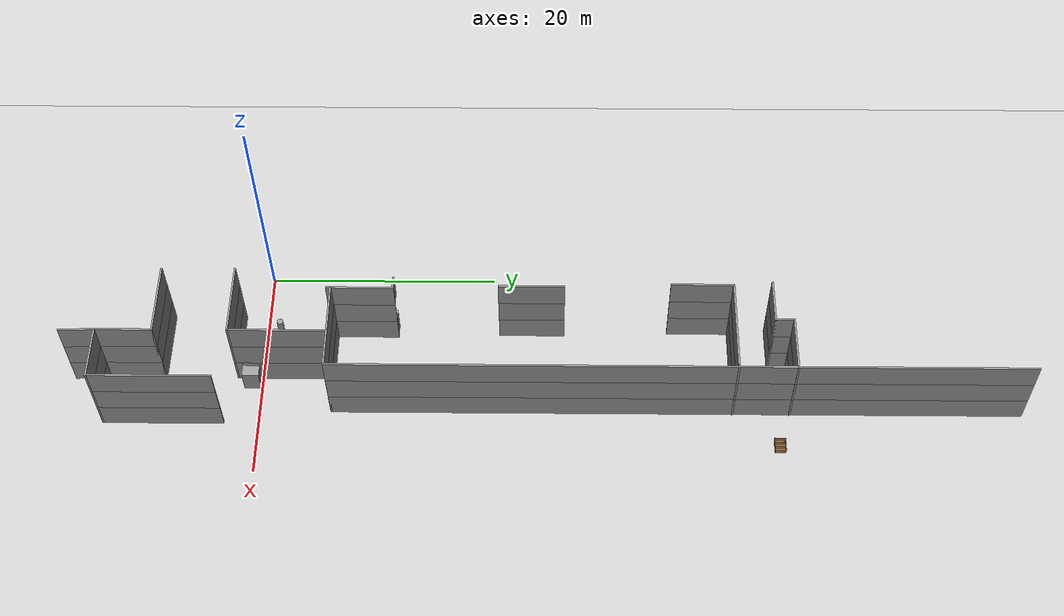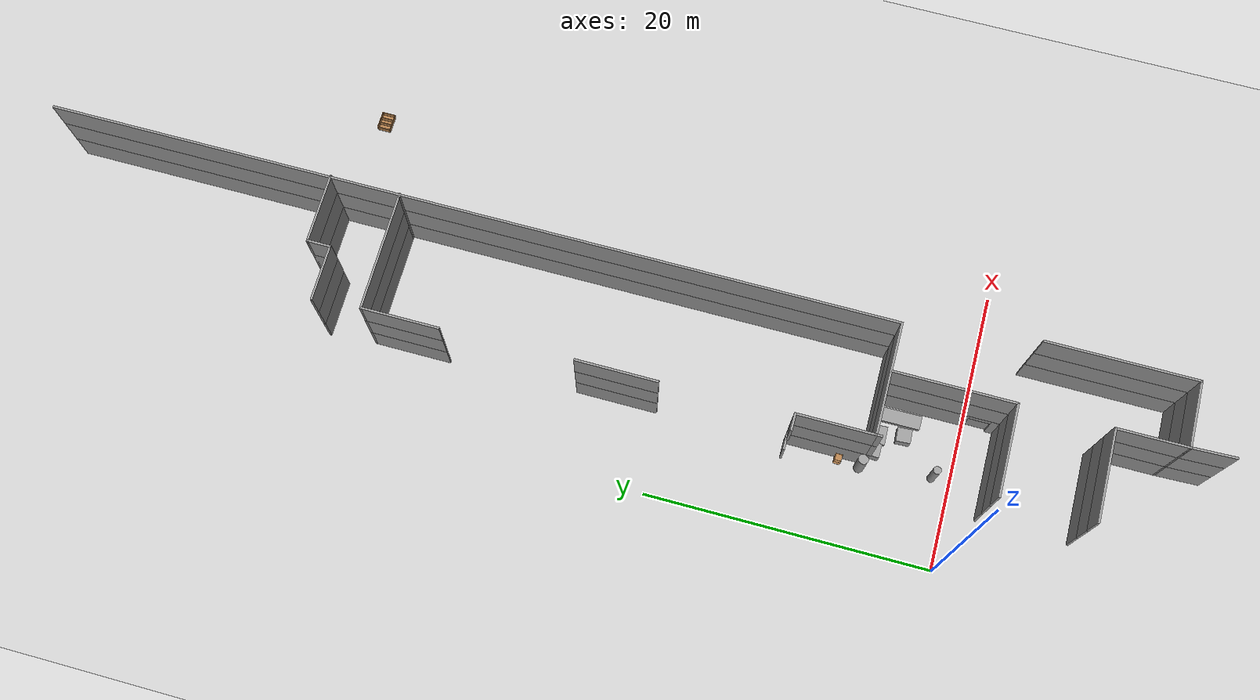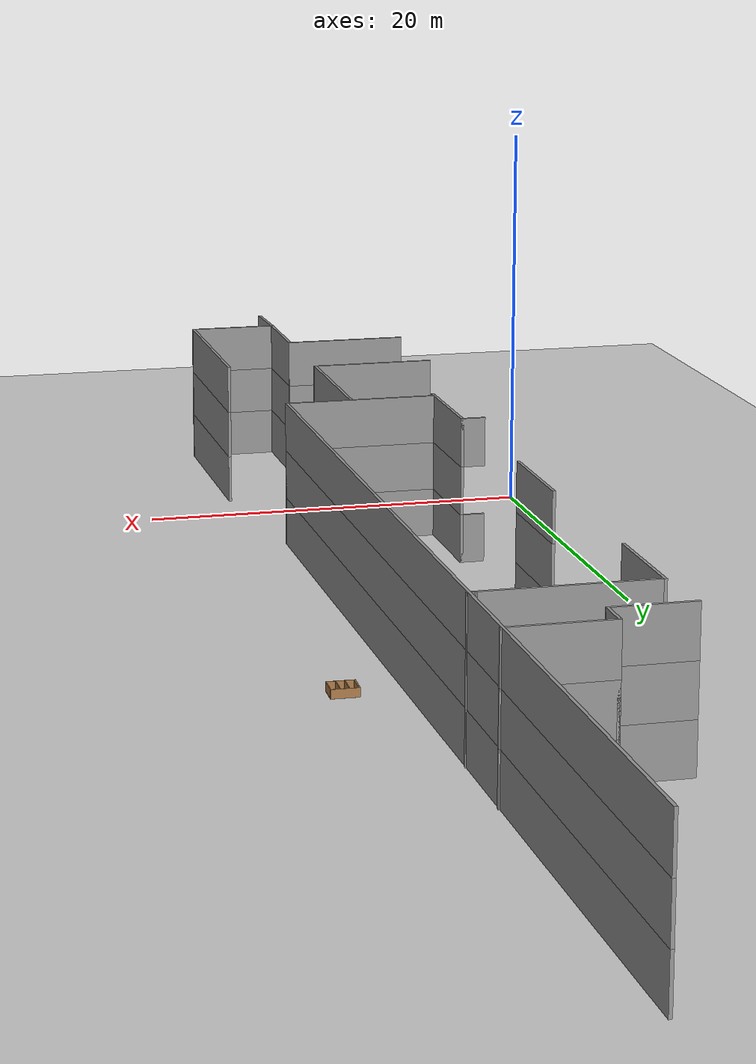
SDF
<sdf version="1.7">
 <world name="default">
  <model name="ground_plane">
   <pose>30 30 0 0 -0 0</pose>
   <static>1</static>
   <link name="link">
    <collision name="collision">
     <geometry><plane><normal>0 0 1</normal><size>100 100</size></plane></geometry>
     <surface><friction><ode><mu>100</mu><mu2>50</mu2></ode></friction></surface>
    </collision>
    <visual name="visual">
     <cast_shadows>0</cast_shadows>
     <geometry><plane><normal>0 0 1</normal><size>100 100</size></plane></geometry>
     <material>
      <script><uri>file://media/materials/scripts/gazebo.material</uri><name>Gazebo/Grey</name></script>
     </material>
    </visual>
   </link>
  </model>
  <model name="Soterrani_AT">
   <pose>30.7763 24.7178 0 0 0 -1.57187</pose>
   <link name="Wall_12">
    <collision name="Wall_12_Collision">
     <geometry><box><size>5.75 0.15 2.5</size></box></geometry>
     <pose>0 0 1.25 0 -0 0</pose>
    </collision>
    <visual name="Wall_12_Visual">
     <pose>0 0 1.25 0 -0 0</pose>
     <geometry><box><size>5.75 0.15 2.5</size></box></geometry>
     <material>
      <script><uri>file://media/materials/scripts/gazebo.material</uri><name>Gazebo/Grey</name></script>
      <ambient>1 1 1 1</ambient>
     </material>
     <meta><layer>0</layer></meta>
    </visual>
    <pose>1.24874 -24.8995 0 0 -0 3.14159</pose>
   </link>
   <link name="Wall_151">
    <collision name="Wall_151_Collision">
     <geometry><box><size>59.75 0.15 2.5</size></box></geometry>
     <pose>0 0 1.25 0 -0 0</pose>
    </collision>
    <visual name="Wall_151_Visual">
     <pose>0 0 1.25 0 -0 0</pose>
     <geometry><box><size>59.75 0.15 2.5</size></box></geometry>
     <material>
      <script><uri>file://media/materials/scripts/gazebo.material</uri><name>Gazebo/Grey</name></script>
      <ambient>1 1 1 1</ambient>
     </material>
     <meta><layer>1</layer></meta>
    </visual>
    <pose>-11.3013 -16.7995 2.5 0 -0 0</pose>
   </link>
   <link name="Wall_152">
    <collision name="Wall_152_Collision">
     <geometry><box><size>8 0.15 2.5</size></box></geometry>
     <pose>0 0 1.25 0 -0 0</pose>
    </collision>
    <visual name="Wall_152_Visual">
     <pose>0 0 1.25 0 -0 0</pose>
     <geometry><box><size>8 0.15 2.5</size></box></geometry>
     <material>
      <script><uri>file://media/materials/scripts/gazebo.material</uri><name>Gazebo/Grey</name></script>
      <ambient>1 1 1 1</ambient>
     </material>
     <meta><layer>1</layer></meta>
    </visual>
    <pose>18.4987 -20.7245 2.5 0 -0 -1.5708</pose>
   </link>
   <link name="Wall_153">
    <collision name="Wall_153_Collision">
     <geometry><box><size>5.5 0.15 2.5</size></box></geometry>
     <pose>0 0 1.25 0 -0 0</pose>
    </collision>
    <visual name="Wall_153_Visual">
     <pose>0 0 1.25 0 -0 0</pose>
     <geometry><box><size>5.5 0.15 2.5</size></box></geometry>
     <material>
      <script><uri>file://media/materials/scripts/gazebo.material</uri><name>Gazebo/Grey</name></script>
      <ambient>1 1 1 1</ambient>
     </material>
     <meta><layer>1</layer></meta>
    </visual>
    <pose>15.8237 -24.6495 2.5 0 -0 3.14159</pose>
   </link>
   <link name="Wall_157">
    <collision name="Wall_157_Collision">
     <geometry><box><size>5.75 0.15 2.5</size></box></geometry>
     <pose>0 0 1.25 0 -0 0</pose>
    </collision>
    <visual name="Wall_157_Visual">
     <pose>0 0 1.25 0 -0 0</pose>
     <geometry><box><size>5.75 0.15 2.5</size></box></geometry>
     <material>
      <script><uri>file://media/materials/scripts/gazebo.material</uri><name>Gazebo/Grey</name></script>
      <ambient>1 1 1 1</ambient>
     </material>
     <meta><layer>1</layer></meta>
    </visual>
    <pose>1.24874 -24.8995 2.5 0 -0 3.14159</pose>
   </link>
   <link name="Wall_16">
    <collision name="Wall_16_Collision">
     <geometry><box><size>5.5 0.15 2.5</size></box></geometry>
     <pose>0 0 1.25 0 -0 0</pose>
    </collision>
    <visual name="Wall_16_Visual">
     <pose>0 0 1.25 0 -0 0</pose>
     <geometry><box><size>5.5 0.15 2.5</size></box></geometry>
     <material>
      <script><uri>file://media/materials/scripts/gazebo.material</uri><name>Gazebo/Grey</name></script>
      <ambient>1 1 1 1</ambient>
     </material>
     <meta><layer>0</layer></meta>
    </visual>
    <pose>-13.4816 -25.1699 0 0 -0 3.14159</pose>
   </link>
   <link name="Wall_160">
    <collision name="Wall_160_Collision">
     <geometry><box><size>5.5 0.15 2.5</size></box></geometry>
     <pose>0 0 1.25 0 -0 0</pose>
    </collision>
    <visual name="Wall_160_Visual">
     <pose>0 0 1.25 0 -0 0</pose>
     <geometry><box><size>5.5 0.15 2.5</size></box></geometry>
     <material>
      <script><uri>file://media/materials/scripts/gazebo.material</uri><name>Gazebo/Grey</name></script>
      <ambient>1 1 1 1</ambient>
     </material>
     <meta><layer>1</layer></meta>
    </visual>
    <pose>-13.4816 -25.1699 2.5 0 -0 3.14159</pose>
   </link>
   <link name="Wall_161">
    <collision name="Wall_161_Collision">
     <geometry><box><size>8.25 0.15 2.5</size></box></geometry>
     <pose>0 0 1.25 0 -0 0</pose>
    </collision>
    <visual name="Wall_161_Visual">
     <pose>0 0 1.25 0 -0 0</pose>
     <geometry><box><size>8.25 0.15 2.5</size></box></geometry>
     <material>
      <script><uri>file://media/materials/scripts/gazebo.material</uri><name>Gazebo/Grey</name></script>
      <ambient>1 1 1 1</ambient>
     </material>
     <meta><layer>1</layer></meta>
    </visual>
    <pose>-16.1566 -21.1199 2.5 0 -0 1.5708</pose>
   </link>
   <link name="Wall_162">
    <collision name="Wall_162_Collision">
     <geometry><box><size>0.464195 0.15 2.5</size></box></geometry>
     <pose>0 0 1.25 0 -0 0</pose>
    </collision>
    <visual name="Wall_162_Visual">
     <pose>0 0 1.25 0 -0 0</pose>
     <geometry><box><size>0.464195 0.15 2.5</size></box></geometry>
     <material>
      <script><uri>file://media/materials/scripts/gazebo.material</uri><name>Gazebo/Grey</name></script>
      <ambient>1 1 1 1</ambient>
     </material>
     <meta><layer>1</layer></meta>
    </visual>
    <pose>-16.1522 -16.9129 2.5 0 -0 -1.59848</pose>
   </link>
   <link name="Wall_163">
    <collision name="Wall_163_Collision">
     <geometry><box><size>5 0.15 2.5</size></box></geometry>
     <pose>0 0 1.25 0 -0 0</pose>
    </collision>
    <visual name="Wall_163_Visual">
     <pose>0 0 1.25 0 -0 0</pose>
     <geometry><box><size>5 0.15 2.5</size></box></geometry>
     <material>
      <script><uri>file://media/materials/scripts/gazebo.material</uri><name>Gazebo/Grey</name></script>
      <ambient>1 1 1 1</ambient>
     </material>
     <meta><layer>1</layer></meta>
    </visual>
    <pose>-21.0847 -19.1578 2.5 0 -0 -1.5708</pose>
   </link>
   <link name="Wall_164">
    <collision name="Wall_164_Collision">
     <geometry><box><size>1.75 0.15 2.5</size></box></geometry>
     <pose>0 0 1.25 0 -0 0</pose>
    </collision>
    <visual name="Wall_164_Visual">
     <pose>0 0 1.25 0 -0 0</pose>
     <geometry><box><size>1.75 0.15 2.5</size></box></geometry>
     <material>
      <script><uri>file://media/materials/scripts/gazebo.material</uri><name>Gazebo/Grey</name></script>
      <ambient>1 1 1 1</ambient>
     </material>
     <meta><layer>1</layer></meta>
    </visual>
    <pose>-20.2847 -21.5828 2.5 0 -0 0</pose>
   </link>
   <link name="Wall_165">
    <collision name="Wall_165_Collision">
     <geometry><box><size>4 0.15 2.5</size></box></geometry>
     <pose>0 0 1.25 0 -0 0</pose>
    </collision>
    <visual name="Wall_165_Visual">
     <pose>0 0 1.25 0 -0 0</pose>
     <geometry><box><size>4 0.15 2.5</size></box></geometry>
     <material>
      <script><uri>file://media/materials/scripts/gazebo.material</uri><name>Gazebo/Grey</name></script>
      <ambient>1 1 1 1</ambient>
     </material>
     <meta><layer>1</layer></meta>
    </visual>
    <pose>-19.4847 -23.5078 2.5 0 -0 -1.5708</pose>
   </link>
   <link name="Wall_17">
    <collision name="Wall_17_Collision">
     <geometry><box><size>8.25 0.15 2.5</size></box></geometry>
     <pose>0 0 1.25 0 -0 0</pose>
    </collision>
    <visual name="Wall_17_Visual">
     <pose>0 0 1.25 0 -0 0</pose>
     <geometry><box><size>8.25 0.15 2.5</size></box></geometry>
     <material>
      <script><uri>file://media/materials/scripts/gazebo.material</uri><name>Gazebo/Grey</name></script>
      <ambient>1 1 1 1</ambient>
     </material>
     <meta><layer>0</layer></meta>
    </visual>
    <pose>-16.1566 -21.1199 0 0 -0 1.5708</pose>
   </link>
   <link name="Wall_182">
    <collision name="Wall_182_Collision">
     <geometry><box><size>6.5 0.15 2.5</size></box></geometry>
     <pose>0 0 1.25 0 -0 0</pose>
    </collision>
    <visual name="Wall_182_Visual">
     <pose>0 0 1.25 0 -0 0</pose>
     <geometry><box><size>6.5 0.15 2.5</size></box></geometry>
     <material>
      <script><uri>file://media/materials/scripts/gazebo.material</uri><name>Gazebo/Grey</name></script>
      <ambient>1 1 1 1</ambient>
     </material>
     <meta><layer>1</layer></meta>
    </visual>
    <pose>26.8935 -23.3718 2.5 0 -0 1.5708</pose>
   </link>
   <link name="Wall_183">
    <collision name="Wall_183_Collision">
     <geometry><box><size>8.5 0.15 2.5</size></box></geometry>
     <pose>0 0 1.25 0 -0 0</pose>
    </collision>
    <visual name="Wall_183_Visual">
     <pose>0 0 1.25 0 -0 0</pose>
     <geometry><box><size>8.5 0.15 2.5</size></box></geometry>
     <material>
      <script><uri>file://media/materials/scripts/gazebo.material</uri><name>Gazebo/Grey</name></script>
      <ambient>1 1 1 1</ambient>
     </material>
     <meta><layer>1</layer></meta>
    </visual>
    <pose>22.7185 -20.1968 2.5 0 -0 3.14159</pose>
   </link>
   <link name="Wall_19">
    <collision name="Wall_19_Collision">
     <geometry><box><size>0.464195 0.15 2.5</size></box></geometry>
     <pose>0 0 1.25 0 -0 0</pose>
    </collision>
    <visual name="Wall_19_Visual">
     <pose>0 0 1.25 0 -0 0</pose>
     <geometry><box><size>0.464195 0.15 2.5</size></box></geometry>
     <material>
      <script><uri>file://media/materials/scripts/gazebo.material</uri><name>Gazebo/Grey</name></script>
      <ambient>1 1 1 1</ambient>
     </material>
     <meta><layer>0</layer></meta>
    </visual>
    <pose>-16.1522 -16.9129 0 0 -0 -1.59848</pose>
   </link>
   <link name="Wall_190">
    <collision name="Wall_190_Collision">
     <geometry><box><size>6.5 0.15 2.5</size></box></geometry>
     <pose>0 0 1.25 0 -0 0</pose>
    </collision>
    <visual name="Wall_190_Visual">
     <pose>0 0 1.25 0 -0 0</pose>
     <geometry><box><size>6.5 0.15 2.5</size></box></geometry>
     <material>
      <script><uri>file://media/materials/scripts/gazebo.material</uri><name>Gazebo/Grey</name></script>
      <ambient>1 1 1 1</ambient>
     </material>
     <meta><layer>1</layer></meta>
    </visual>
    <pose>33.248 -23.351 2.5 0 -0 1.5708</pose>
   </link>
   <link name="Wall_191">
    <collision name="Wall_191_Collision">
     <geometry><box><size>5 0.15 2.5</size></box></geometry>
     <pose>0 0 1.25 0 -0 0</pose>
    </collision>
    <visual name="Wall_191_Visual">
     <pose>0 0 1.25 0 -0 0</pose>
     <geometry><box><size>5 0.15 2.5</size></box></geometry>
     <material>
      <script><uri>file://media/materials/scripts/gazebo.material</uri><name>Gazebo/Grey</name></script>
      <ambient>1 1 1 1</ambient>
     </material>
     <meta><layer>1</layer></meta>
    </visual>
    <pose>35.673 -20.176 2.5 0 -0 0</pose>
   </link>
   <link name="Wall_192">
    <collision name="Wall_192_Collision">
     <geometry><box><size>4.75 0.15 2.5</size></box></geometry>
     <pose>0 0 1.25 0 -0 0</pose>
    </collision>
    <visual name="Wall_192_Visual">
     <pose>0 0 1.25 0 -0 0</pose>
     <geometry><box><size>4.75 0.15 2.5</size></box></geometry>
     <material>
      <script><uri>file://media/materials/scripts/gazebo.material</uri><name>Gazebo/Grey</name></script>
      <ambient>1 1 1 1</ambient>
     </material>
     <meta><layer>1</layer></meta>
    </visual>
    <pose>38.098 -17.876 2.5 0 -0 1.5708</pose>
   </link>
   <link name="Wall_193">
    <collision name="Wall_193_Collision">
     <geometry><box><size>10.5 0.15 2.5</size></box></geometry>
     <pose>0 0 1.25 0 -0 0</pose>
    </collision>
    <visual name="Wall_193_Visual">
     <pose>0 0 1.25 0 -0 0</pose>
     <geometry><box><size>10.5 0.15 2.5</size></box></geometry>
     <material>
      <script><uri>file://media/materials/scripts/gazebo.material</uri><name>Gazebo/Grey</name></script>
      <ambient>1 1 1 1</ambient>
     </material>
     <meta><layer>1</layer></meta>
    </visual>
    <pose>32.923 -15.576 2.5 0 -0 3.14159</pose>
   </link>
   <link name="Wall_198">
    <collision name="Wall_198_Collision">
     <geometry><box><size>3.14295 0.15 2.5</size></box></geometry>
     <pose>0 0 1.25 0 -0 0</pose>
    </collision>
    <visual name="Wall_198_Visual">
     <pose>0 0 1.25 0 -0 0</pose>
     <geometry><box><size>3.14295 0.15 2.5</size></box></geometry>
     <material>
      <script><uri>file://media/materials/scripts/gazebo.material</uri><name>Gazebo/Grey</name></script>
      <ambient>1 1 1 1</ambient>
     </material>
     <meta><layer>1</layer></meta>
    </visual>
    <pose>39.5937 -20.1272 2.5 0 -0 -3.10893</pose>
   </link>
   <link name="Wall_21">
    <collision name="Wall_21_Collision">
     <geometry><box><size>5 0.15 2.5</size></box></geometry>
     <pose>0 0 1.25 0 -0 0</pose>
    </collision>
    <visual name="Wall_21_Visual">
     <pose>0 0 1.25 0 -0 0</pose>
     <geometry><box><size>5 0.15 2.5</size></box></geometry>
     <material>
      <script><uri>file://media/materials/scripts/gazebo.material</uri><name>Gazebo/Grey</name></script>
      <ambient>1 1 1 1</ambient>
     </material>
     <meta><layer>0</layer></meta>
    </visual>
    <pose>-21.0847 -19.1578 0 0 -0 -1.5708</pose>
   </link>
   <link name="Wall_210">
    <collision name="Wall_210_Collision">
     <geometry><box><size>0.5 0.15 2.5</size></box></geometry>
     <pose>0 0 1.25 0 -0 0</pose>
    </collision>
    <visual name="Wall_210_Visual">
     <pose>0 0 1.25 0 -0 0</pose>
     <geometry><box><size>0.5 0.15 2.5</size></box></geometry>
     <material>
      <script><uri>file://media/materials/scripts/gazebo.material</uri><name>Gazebo/Grey</name></script>
      <ambient>1 1 1 1</ambient>
     </material>
     <meta><layer>1</layer></meta>
    </visual>
    <pose>18.6737 -24.6495 2.5 0 -0 0</pose>
   </link>
   <link name="Wall_22">
    <collision name="Wall_22_Collision">
     <geometry><box><size>1.75 0.15 2.5</size></box></geometry>
     <pose>0 0 1.25 0 -0 0</pose>
    </collision>
    <visual name="Wall_22_Visual">
     <pose>0 0 1.25 0 -0 0</pose>
     <geometry><box><size>1.75 0.15 2.5</size></box></geometry>
     <material>
      <script><uri>file://media/materials/scripts/gazebo.material</uri><name>Gazebo/Grey</name></script>
      <ambient>1 1 1 1</ambient>
     </material>
     <meta><layer>0</layer></meta>
    </visual>
    <pose>-20.2847 -21.5828 0 0 -0 0</pose>
   </link>
   <link name="Wall_222">
    <collision name="Wall_222_Collision">
     <geometry><box><size>59.75 0.15 2.5</size></box></geometry>
     <pose>0 0 1.25 0 -0 0</pose>
    </collision>
    <visual name="Wall_222_Visual">
     <pose>0 0 1.25 0 -0 0</pose>
     <geometry><box><size>59.75 0.15 2.5</size></box></geometry>
     <material>
      <script><uri>file://media/materials/scripts/gazebo.material</uri><name>Gazebo/Grey</name></script>
      <ambient>1 1 1 1</ambient>
     </material>
     <meta><layer>2</layer></meta>
    </visual>
    <pose>-11.3013 -16.7995 5 0 -0 0</pose>
   </link>
   <link name="Wall_223">
    <collision name="Wall_223_Collision">
     <geometry><box><size>8 0.15 2.5</size></box></geometry>
     <pose>0 0 1.25 0 -0 0</pose>
    </collision>
    <visual name="Wall_223_Visual">
     <pose>0 0 1.25 0 -0 0</pose>
     <geometry><box><size>8 0.15 2.5</size></box></geometry>
     <material>
      <script><uri>file://media/materials/scripts/gazebo.material</uri><name>Gazebo/Grey</name></script>
      <ambient>1 1 1 1</ambient>
     </material>
     <meta><layer>2</layer></meta>
    </visual>
    <pose>18.4987 -20.7245 5 0 -0 -1.5708</pose>
   </link>
   <link name="Wall_224">
    <collision name="Wall_224_Collision">
     <geometry><box><size>5.5 0.15 2.5</size></box></geometry>
     <pose>0 0 1.25 0 -0 0</pose>
    </collision>
    <visual name="Wall_224_Visual">
     <pose>0 0 1.25 0 -0 0</pose>
     <geometry><box><size>5.5 0.15 2.5</size></box></geometry>
     <material>
      <script><uri>file://media/materials/scripts/gazebo.material</uri><name>Gazebo/Grey</name></script>
      <ambient>1 1 1 1</ambient>
     </material>
     <meta><layer>2</layer></meta>
    </visual>
    <pose>15.8237 -24.6495 5 0 -0 3.14159</pose>
   </link>
   <link name="Wall_225">
    <collision name="Wall_225_Collision">
     <geometry><box><size>1.25 0.15 2.5</size></box></geometry>
     <pose>0 0 1.25 0 -0 0</pose>
    </collision>
    <visual name="Wall_225_Visual">
     <pose>0 0 1.25 0 -0 0</pose>
     <geometry><box><size>1.25 0.15 2.5</size></box></geometry>
     <material>
      <script><uri>file://media/materials/scripts/gazebo.material</uri><name>Gazebo/Grey</name></script>
      <ambient>1 1 1 1</ambient>
     </material>
     <meta><layer>2</layer></meta>
    </visual>
    <pose>13.1487 -25.1995 5 0 -0 -1.5708</pose>
   </link>
   <link name="Wall_228">
    <collision name="Wall_228_Collision">
     <geometry><box><size>5.75 0.15 2.5</size></box></geometry>
     <pose>0 0 1.25 0 -0 0</pose>
    </collision>
    <visual name="Wall_228_Visual">
     <pose>0 0 1.25 0 -0 0</pose>
     <geometry><box><size>5.75 0.15 2.5</size></box></geometry>
     <material>
      <script><uri>file://media/materials/scripts/gazebo.material</uri><name>Gazebo/Grey</name></script>
      <ambient>1 1 1 1</ambient>
     </material>
     <meta><layer>2</layer></meta>
    </visual>
    <pose>1.24874 -24.8995 5 0 -0 3.14159</pose>
   </link>
   <link name="Wall_23">
    <collision name="Wall_23_Collision">
     <geometry><box><size>4 0.15 2.5</size></box></geometry>
     <pose>0 0 1.25 0 -0 0</pose>
    </collision>
    <visual name="Wall_23_Visual">
     <pose>0 0 1.25 0 -0 0</pose>
     <geometry><box><size>4 0.15 2.5</size></box></geometry>
     <material>
      <script><uri>file://media/materials/scripts/gazebo.material</uri><name>Gazebo/Grey</name></script>
      <ambient>1 1 1 1</ambient>
     </material>
     <meta><layer>0</layer></meta>
    </visual>
    <pose>-19.4847 -23.5078 0 0 -0 -1.5708</pose>
   </link>
   <link name="Wall_231">
    <collision name="Wall_231_Collision">
     <geometry><box><size>5.5 0.15 2.5</size></box></geometry>
     <pose>0 0 1.25 0 -0 0</pose>
    </collision>
    <visual name="Wall_231_Visual">
     <pose>0 0 1.25 0 -0 0</pose>
     <geometry><box><size>5.5 0.15 2.5</size></box></geometry>
     <material>
      <script><uri>file://media/materials/scripts/gazebo.material</uri><name>Gazebo/Grey</name></script>
      <ambient>1 1 1 1</ambient>
     </material>
     <meta><layer>2</layer></meta>
    </visual>
    <pose>-13.4816 -25.1699 5 0 -0 3.14159</pose>
   </link>
   <link name="Wall_232">
    <collision name="Wall_232_Collision">
     <geometry><box><size>8.25 0.15 2.5</size></box></geometry>
     <pose>0 0 1.25 0 -0 0</pose>
    </collision>
    <visual name="Wall_232_Visual">
     <pose>0 0 1.25 0 -0 0</pose>
     <geometry><box><size>8.25 0.15 2.5</size></box></geometry>
     <material>
      <script><uri>file://media/materials/scripts/gazebo.material</uri><name>Gazebo/Grey</name></script>
      <ambient>1 1 1 1</ambient>
     </material>
     <meta><layer>2</layer></meta>
    </visual>
    <pose>-16.1566 -21.1199 5 0 -0 1.5708</pose>
   </link>
   <link name="Wall_233">
    <collision name="Wall_233_Collision">
     <geometry><box><size>0.464195 0.15 2.5</size></box></geometry>
     <pose>0 0 1.25 0 -0 0</pose>
    </collision>
    <visual name="Wall_233_Visual">
     <pose>0 0 1.25 0 -0 0</pose>
     <geometry><box><size>0.464195 0.15 2.5</size></box></geometry>
     <material>
      <script><uri>file://media/materials/scripts/gazebo.material</uri><name>Gazebo/Grey</name></script>
      <ambient>1 1 1 1</ambient>
     </material>
     <meta><layer>2</layer></meta>
    </visual>
    <pose>-16.1522 -16.9129 5 0 -0 -1.59848</pose>
   </link>
   <link name="Wall_234">
    <collision name="Wall_234_Collision">
     <geometry><box><size>5 0.15 2.5</size></box></geometry>
     <pose>0 0 1.25 0 -0 0</pose>
    </collision>
    <visual name="Wall_234_Visual">
     <pose>0 0 1.25 0 -0 0</pose>
     <geometry><box><size>5 0.15 2.5</size></box></geometry>
     <material>
      <script><uri>file://media/materials/scripts/gazebo.material</uri><name>Gazebo/Grey</name></script>
      <ambient>1 1 1 1</ambient>
     </material>
     <meta><layer>2</layer></meta>
    </visual>
    <pose>-21.0847 -19.1578 5 0 -0 -1.5708</pose>
   </link>
   <link name="Wall_235">
    <collision name="Wall_235_Collision">
     <geometry><box><size>1.75 0.15 2.5</size></box></geometry>
     <pose>0 0 1.25 0 -0 0</pose>
    </collision>
    <visual name="Wall_235_Visual">
     <pose>0 0 1.25 0 -0 0</pose>
     <geometry><box><size>1.75 0.15 2.5</size></box></geometry>
     <material>
      <script><uri>file://media/materials/scripts/gazebo.material</uri><name>Gazebo/Grey</name></script>
      <ambient>1 1 1 1</ambient>
     </material>
     <meta><layer>2</layer></meta>
    </visual>
    <pose>-20.2847 -21.5828 5 0 -0 0</pose>
   </link>
   <link name="Wall_236">
    <collision name="Wall_236_Collision">
     <geometry><box><size>4 0.15 2.5</size></box></geometry>
     <pose>0 0 1.25 0 -0 0</pose>
    </collision>
    <visual name="Wall_236_Visual">
     <pose>0 0 1.25 0 -0 0</pose>
     <geometry><box><size>4 0.15 2.5</size></box></geometry>
     <material>
      <script><uri>file://media/materials/scripts/gazebo.material</uri><name>Gazebo/Grey</name></script>
      <ambient>1 1 1 1</ambient>
     </material>
     <meta><layer>2</layer></meta>
    </visual>
    <pose>-19.4847 -23.5078 5 0 -0 -1.5708</pose>
   </link>
   <link name="Wall_252">
    <collision name="Wall_252_Collision">
     <geometry><box><size>6.5 0.15 2.5</size></box></geometry>
     <pose>0 0 1.25 0 -0 0</pose>
    </collision>
    <visual name="Wall_252_Visual">
     <pose>0 0 1.25 0 -0 0</pose>
     <geometry><box><size>6.5 0.15 2.5</size></box></geometry>
     <material>
      <script><uri>file://media/materials/scripts/gazebo.material</uri><name>Gazebo/Grey</name></script>
      <ambient>1 1 1 1</ambient>
     </material>
     <meta><layer>2</layer></meta>
    </visual>
    <pose>26.8935 -23.3718 5 0 -0 1.5708</pose>
   </link>
   <link name="Wall_253">
    <collision name="Wall_253_Collision">
     <geometry><box><size>8.5 0.15 2.5</size></box></geometry>
     <pose>0 0 1.25 0 -0 0</pose>
    </collision>
    <visual name="Wall_253_Visual">
     <pose>0 0 1.25 0 -0 0</pose>
     <geometry><box><size>8.5 0.15 2.5</size></box></geometry>
     <material>
      <script><uri>file://media/materials/scripts/gazebo.material</uri><name>Gazebo/Grey</name></script>
      <ambient>1 1 1 1</ambient>
     </material>
     <meta><layer>2</layer></meta>
    </visual>
    <pose>22.7185 -20.1968 5 0 -0 3.14159</pose>
   </link>
   <link name="Wall_260">
    <collision name="Wall_260_Collision">
     <geometry><box><size>6.5 0.15 2.5</size></box></geometry>
     <pose>0 0 1.25 0 -0 0</pose>
    </collision>
    <visual name="Wall_260_Visual">
     <pose>0 0 1.25 0 -0 0</pose>
     <geometry><box><size>6.5 0.15 2.5</size></box></geometry>
     <material>
      <script><uri>file://media/materials/scripts/gazebo.material</uri><name>Gazebo/Grey</name></script>
      <ambient>1 1 1 1</ambient>
     </material>
     <meta><layer>2</layer></meta>
    </visual>
    <pose>33.248 -23.351 5 0 -0 1.5708</pose>
   </link>
   <link name="Wall_261">
    <collision name="Wall_261_Collision">
     <geometry><box><size>5 0.15 2.5</size></box></geometry>
     <pose>0 0 1.25 0 -0 0</pose>
    </collision>
    <visual name="Wall_261_Visual">
     <pose>0 0 1.25 0 -0 0</pose>
     <geometry><box><size>5 0.15 2.5</size></box></geometry>
     <material>
      <script><uri>file://media/materials/scripts/gazebo.material</uri><name>Gazebo/Grey</name></script>
      <ambient>1 1 1 1</ambient>
     </material>
     <meta><layer>2</layer></meta>
    </visual>
    <pose>35.673 -20.176 5 0 -0 0</pose>
   </link>
   <link name="Wall_262">
    <collision name="Wall_262_Collision">
     <geometry><box><size>4.75 0.15 2.5</size></box></geometry>
     <pose>0 0 1.25 0 -0 0</pose>
    </collision>
    <visual name="Wall_262_Visual">
     <pose>0 0 1.25 0 -0 0</pose>
     <geometry><box><size>4.75 0.15 2.5</size></box></geometry>
     <material>
      <script><uri>file://media/materials/scripts/gazebo.material</uri><name>Gazebo/Grey</name></script>
      <ambient>1 1 1 1</ambient>
     </material>
     <meta><layer>2</layer></meta>
    </visual>
    <pose>38.098 -17.876 5 0 -0 1.5708</pose>
   </link>
   <link name="Wall_263">
    <collision name="Wall_263_Collision">
     <geometry><box><size>10.5 0.15 2.5</size></box></geometry>
     <pose>0 0 1.25 0 -0 0</pose>
    </collision>
    <visual name="Wall_263_Visual">
     <pose>0 0 1.25 0 -0 0</pose>
     <geometry><box><size>10.5 0.15 2.5</size></box></geometry>
     <material>
      <script><uri>file://media/materials/scripts/gazebo.material</uri><name>Gazebo/Grey</name></script>
      <ambient>1 1 1 1</ambient>
     </material>
     <meta><layer>2</layer></meta>
    </visual>
    <pose>32.923 -15.576 5 0 -0 3.14159</pose>
   </link>
   <link name="Wall_268">
    <collision name="Wall_268_Collision">
     <geometry><box><size>3.14295 0.15 2.5</size></box></geometry>
     <pose>0 0 1.25 0 -0 0</pose>
    </collision>
    <visual name="Wall_268_Visual">
     <pose>0 0 1.25 0 -0 0</pose>
     <geometry><box><size>3.14295 0.15 2.5</size></box></geometry>
     <material>
      <script><uri>file://media/materials/scripts/gazebo.material</uri><name>Gazebo/Grey</name></script>
      <ambient>1 1 1 1</ambient>
     </material>
     <meta><layer>2</layer></meta>
    </visual>
    <pose>39.5937 -20.1272 5 0 -0 -3.10893</pose>
   </link>
   <link name="Wall_278">
    <collision name="Wall_278_Collision">
     <geometry><box><size>0.5 0.15 2.5</size></box></geometry>
     <pose>0 0 1.25 0 -0 0</pose>
    </collision>
    <visual name="Wall_278_Visual">
     <pose>0 0 1.25 0 -0 0</pose>
     <geometry><box><size>0.5 0.15 2.5</size></box></geometry>
     <material>
      <script><uri>file://media/materials/scripts/gazebo.material</uri><name>Gazebo/Grey</name></script>
      <ambient>1 1 1 1</ambient>
     </material>
     <meta><layer>2</layer></meta>
    </visual>
    <pose>18.6737 -24.6495 5 0 -0 0</pose>
   </link>
   <link name="Wall_3">
    <collision name="Wall_3_Collision">
     <geometry><box><size>59.75 0.15 2.5</size></box></geometry>
     <pose>0 0 1.25 0 -0 0</pose>
    </collision>
    <visual name="Wall_3_Visual">
     <pose>0 0 1.25 0 -0 0</pose>
     <geometry><box><size>59.75 0.15 2.5</size></box></geometry>
     <material>
      <script><uri>file://media/materials/scripts/gazebo.material</uri><name>Gazebo/Grey</name></script>
      <ambient>1 1 1 1</ambient>
     </material>
     <meta><layer>0</layer></meta>
    </visual>
    <pose>-11.3013 -16.7995 0 0 -0 0</pose>
   </link>
   <link name="Wall_4">
    <collision name="Wall_4_Collision">
     <geometry><box><size>8 0.15 2.5</size></box></geometry>
     <pose>0 0 1.25 0 -0 0</pose>
    </collision>
    <visual name="Wall_4_Visual">
     <pose>0 0 1.25 0 -0 0</pose>
     <geometry><box><size>8 0.15 2.5</size></box></geometry>
     <material>
      <script><uri>file://media/materials/scripts/gazebo.material</uri><name>Gazebo/Grey</name></script>
      <ambient>1 1 1 1</ambient>
     </material>
     <meta><layer>0</layer></meta>
    </visual>
    <pose>18.4987 -20.7245 0 0 -0 -1.5708</pose>
   </link>
   <link name="Wall_5">
    <collision name="Wall_5_Collision">
     <geometry><box><size>5.5 0.15 2.5</size></box></geometry>
     <pose>0 0 1.25 0 -0 0</pose>
    </collision>
    <visual name="Wall_5_Visual">
     <pose>0 0 1.25 0 -0 0</pose>
     <geometry><box><size>5.5 0.15 2.5</size></box></geometry>
     <material>
      <script><uri>file://media/materials/scripts/gazebo.material</uri><name>Gazebo/Grey</name></script>
      <ambient>1 1 1 1</ambient>
     </material>
     <meta><layer>0</layer></meta>
    </visual>
    <pose>15.8237 -24.6495 0 0 -0 3.14159</pose>
   </link>
   <link name="Wall_55">
    <collision name="Wall_55_Collision">
     <geometry><box><size>6.5 0.15 2.5</size></box></geometry>
     <pose>0 0 1.25 0 -0 0</pose>
    </collision>
    <visual name="Wall_55_Visual">
     <pose>0 0 1.25 0 -0 0</pose>
     <geometry><box><size>6.5 0.15 2.5</size></box></geometry>
     <material>
      <script><uri>file://media/materials/scripts/gazebo.material</uri><name>Gazebo/Grey</name></script>
      <ambient>1 1 1 1</ambient>
     </material>
     <meta><layer>0</layer></meta>
    </visual>
    <pose>26.8935 -23.3718 0 0 -0 1.5708</pose>
   </link>
   <link name="Wall_56">
    <pose>22.7185 -20.1968 0 0 -0 3.14159</pose>
    <visual name="Wall_56_Visual_0">
     <pose>-3.91307 0 1.25 0 -0 0</pose>
     <geometry><box><size>0.673859 0.15 2.5</size></box></geometry>
     <material>
      <script><uri>file://media/materials/scripts/gazebo.material</uri><name>Gazebo/Grey</name></script>
      <ambient>1 1 1 1</ambient>
     </material>
     <meta><layer>0</layer></meta>
    </visual>
    <collision name="Wall_56_Collision_0">
     <geometry><box><size>0.673859 0.15 2.5</size></box></geometry>
     <pose>-3.91307 0 1.25 0 -0 0</pose>
    </collision>
    <visual name="Wall_56_Visual_1">
     <pose>1.08693 0 1.25 0 -0 0</pose>
     <geometry><box><size>6.32614 0.15 2.5</size></box></geometry>
     <material>
      <script><uri>file://media/materials/scripts/gazebo.material</uri><name>Gazebo/Grey</name></script>
      <ambient>1 1 1 1</ambient>
     </material>
     <meta><layer>0</layer></meta>
    </visual>
    <collision name="Wall_56_Collision_1">
     <geometry><box><size>6.32614 0.15 2.5</size></box></geometry>
     <pose>1.08693 0 1.25 0 -0 0</pose>
    </collision>
    <visual name="Wall_56_Visual_2">
     <pose>-2.82614 0 2.25 0 -0 0</pose>
     <geometry><box><size>1.5 0.15 0.5</size></box></geometry>
     <material>
      <script><uri>file://media/materials/scripts/gazebo.material</uri><name>Gazebo/Grey</name></script>
      <ambient>1 1 1 1</ambient>
     </material>
     <meta><layer>0</layer></meta>
    </visual>
    <collision name="Wall_56_Collision_2">
     <geometry><box><size>1.5 0.15 0.5</size></box></geometry>
     <pose>-2.82614 0 2.25 0 -0 0</pose>
    </collision>
   </link>
   <link name="Wall_6">
    <collision name="Wall_6_Collision">
     <geometry><box><size>1.25 0.15 2.5</size></box></geometry>
     <pose>0 0 1.25 0 -0 0</pose>
    </collision>
    <visual name="Wall_6_Visual">
     <pose>0 0 1.25 0 -0 0</pose>
     <geometry><box><size>1.25 0.15 2.5</size></box></geometry>
     <material>
      <script><uri>file://media/materials/scripts/gazebo.material</uri><name>Gazebo/Grey</name></script>
      <ambient>1 1 1 1</ambient>
     </material>
     <meta><layer>0</layer></meta>
    </visual>
    <pose>13.1487 -25.1995 0 0 -0 -1.5708</pose>
   </link>
   <link name="Wall_66">
    <collision name="Wall_66_Collision">
     <geometry><box><size>6.5 0.15 2.5</size></box></geometry>
     <pose>0 0 1.25 0 -0 0</pose>
    </collision>
    <visual name="Wall_66_Visual">
     <pose>0 0 1.25 0 -0 0</pose>
     <geometry><box><size>6.5 0.15 2.5</size></box></geometry>
     <material>
      <script><uri>file://media/materials/scripts/gazebo.material</uri><name>Gazebo/Grey</name></script>
      <ambient>1 1 1 1</ambient>
     </material>
     <meta><layer>0</layer></meta>
    </visual>
    <pose>33.248 -23.351 0 0 -0 1.5708</pose>
   </link>
   <link name="Wall_67">
    <collision name="Wall_67_Collision">
     <geometry><box><size>5 0.15 2.5</size></box></geometry>
     <pose>0 0 1.25 0 -0 0</pose>
    </collision>
    <visual name="Wall_67_Visual">
     <pose>0 0 1.25 0 -0 0</pose>
     <geometry><box><size>5 0.15 2.5</size></box></geometry>
     <material>
      <script><uri>file://media/materials/scripts/gazebo.material</uri><name>Gazebo/Grey</name></script>
      <ambient>1 1 1 1</ambient>
     </material>
     <meta><layer>0</layer></meta>
    </visual>
    <pose>35.673 -20.176 0 0 -0 0</pose>
   </link>
   <link name="Wall_68">
    <collision name="Wall_68_Collision">
     <geometry><box><size>4.75 0.15 2.5</size></box></geometry>
     <pose>0 0 1.25 0 -0 0</pose>
    </collision>
    <visual name="Wall_68_Visual">
     <pose>0 0 1.25 0 -0 0</pose>
     <geometry><box><size>4.75 0.15 2.5</size></box></geometry>
     <material>
      <script><uri>file://media/materials/scripts/gazebo.material</uri><name>Gazebo/Grey</name></script>
      <ambient>1 1 1 1</ambient>
     </material>
     <meta><layer>0</layer></meta>
    </visual>
    <pose>38.098 -17.876 0 0 -0 1.5708</pose>
   </link>
   <link name="Wall_69">
    <collision name="Wall_69_Collision">
     <geometry><box><size>10.5 0.15 2.5</size></box></geometry>
     <pose>0 0 1.25 0 -0 0</pose>
    </collision>
    <visual name="Wall_69_Visual">
     <pose>0 0 1.25 0 -0 0</pose>
     <geometry><box><size>10.5 0.15 2.5</size></box></geometry>
     <material>
      <script><uri>file://media/materials/scripts/gazebo.material</uri><name>Gazebo/Grey</name></script>
      <ambient>1 1 1 1</ambient>
     </material>
     <meta><layer>0</layer></meta>
    </visual>
    <pose>32.923 -15.576 0 0 -0 3.14159</pose>
   </link>
   <link name="Wall_79">
    <collision name="Wall_79_Collision">
     <geometry><box><size>3.14295 0.15 2.5</size></box></geometry>
     <pose>0 0 1.25 0 -0 0</pose>
    </collision>
    <visual name="Wall_79_Visual">
     <pose>0 0 1.25 0 -0 0</pose>
     <geometry><box><size>3.14295 0.15 2.5</size></box></geometry>
     <material>
      <script><uri>file://media/materials/scripts/gazebo.material</uri><name>Gazebo/Grey</name></script>
      <ambient>1 1 1 1</ambient>
     </material>
     <meta><layer>0</layer></meta>
    </visual>
    <pose>39.5937 -20.1272 0 0 -0 -3.10893</pose>
   </link>
   <static>1</static>
  </model>
  <model name="cabinet">
   <static>1</static>
   <link name="cabinet_bottom_plate">
    <inertial>
     <pose>0 0 -1 0 -0 0</pose>
     <inertia><ixx>2.05</ixx><ixy>0</ixy><ixz>0</ixz><iyy>2.05</iyy><iyz>0</iyz><izz>2.05</izz></inertia>
     <mass>25</mass>
    </inertial>
    <collision name="cabinet_bottom_plate_geom">
     <pose>0 0 0.01 0 -0 0</pose>
     <geometry><box><size>0.45 0.45 0.02</size></box></geometry>
    </collision>
    <visual name="cabinet_bottom_plate_geom_visual">
     <pose>0 0 0.01 0 -0 0</pose>
     <geometry><box><size>0.45 0.45 0.02</size></box></geometry>
     <material>
      <script><uri>file://media/materials/scripts/gazebo.material</uri><name>Gazebo/Wood</name></script>
     </material>
    </visual>
    <collision name="cabinet_bottom_plate_geom_cabinet_back_plate">
     <pose>0.235 0 0.51 0 -0 0</pose>
     <geometry><box><size>0.02 0.45 1.02</size></box></geometry>
    </collision>
    <visual name="cabinet_bottom_plate_geom_cabinet_back_plate_visual">
     <pose>0.235 0 0.51 0 -0 0</pose>
     <geometry><box><size>0.02 0.45 1.02</size></box></geometry>
     <material>
      <script><uri>file://media/materials/scripts/gazebo.material</uri><name>Gazebo/Wood</name></script>
     </material>
    </visual>
    <collision name="cabinet_bottom_plate_geom_cabinet_left_plate">
     <pose>0 0.235 0.51 0 -0 0</pose>
     <geometry><box><size>0.45 0.02 1.02</size></box></geometry>
    </collision>
    <visual name="cabinet_bottom_plate_geom_cabinet_left_plate_visual">
     <pose>0 0.235 0.51 0 -0 0</pose>
     <geometry><box><size>0.45 0.02 1.02</size></box></geometry>
     <material>
      <script><uri>file://media/materials/scripts/gazebo.material</uri><name>Gazebo/Wood</name></script>
     </material>
    </visual>
    <collision name="cabinet_bottom_plate_geom_cabinet_middle_plate">
     <pose>0 0 0.51 0 -0 0</pose>
     <geometry><box><size>0.45 0.45 0.02</size></box></geometry>
    </collision>
    <visual name="cabinet_bottom_plate_geom_cabinet_middle_plate_visual">
     <pose>0 0 0.51 0 -0 0</pose>
     <geometry><box><size>0.45 0.45 0.02</size></box></geometry>
     <material>
      <script><uri>file://media/materials/scripts/gazebo.material</uri><name>Gazebo/Wood</name></script>
     </material>
    </visual>
    <collision name="cabinet_bottom_plate_geom_cabinet_right_plate">
     <pose>0 -0.235 0.51 0 -0 0</pose>
     <geometry><box><size>0.45 0.02 1.02</size></box></geometry>
    </collision>
    <visual name="cabinet_bottom_plate_geom_cabinet_right_plate_visual">
     <pose>0 -0.235 0.51 0 -0 0</pose>
     <geometry><box><size>0.45 0.02 1.02</size></box></geometry>
     <material>
      <script><uri>file://media/materials/scripts/gazebo.material</uri><name>Gazebo/Wood</name></script>
     </material>
    </visual>
    <collision name="cabinet_bottom_plate_geom_cabinet_top_plate">
     <pose>0 0 1.01 0 -0 0</pose>
     <geometry><box><size>0.45 0.45 0.02</size></box></geometry>
    </collision>
    <visual name="cabinet_bottom_plate_geom_cabinet_top_plate_visual">
     <pose>0 0 1.01 0 -0 0</pose>
     <geometry><box><size>0.45 0.45 0.02</size></box></geometry>
     <material>
      <script><uri>file://media/materials/scripts/gazebo.material</uri><name>Gazebo/Wood</name></script>
     </material>
    </visual>
   </link>
   <pose>5.78209 7.80087 0 0 -0 0</pose>
  </model>
  <model name="unit_cylinder">
   <pose>6.24794 1.32283 1.24377 0 -0 0.000951</pose>
   <link name="link">
    <inertial>
     <mass>1</mass>
     <inertia><ixx>0.145833</ixx><ixy>0</ixy><ixz>0</ixz><iyy>0.145833</iyy><iyz>0</iyz><izz>0.125</izz></inertia>
    </inertial>
    <collision name="collision">
     <geometry><cylinder><radius>0.272712</radius><length>2.48755</length></cylinder></geometry>
    </collision>
    <visual name="visual">
     <geometry><cylinder><radius>0.272712</radius><length>2.48755</length></cylinder></geometry>
     <material>
      <script><name>Gazebo/Grey</name><uri>file://media/materials/scripts/gazebo.material</uri></script>
     </material>
    </visual>
   </link>
  </model>
  <model name="unit_cylinder_clone">
   <pose>5.68434 6.2627 1.24377 0 -0 0.001252</pose>
   <link name="link">
    <inertial>
     <mass>1</mass>
     <inertia><ixx>0.145833</ixx><ixy>0</ixy><ixz>0</ixz><iyy>0.145833</iyy><iyz>0</iyz><izz>0.125</izz></inertia>
    </inertial>
    <collision name="collision">
     <geometry><cylinder><radius>0.347319</radius><length>2.48755</length></cylinder></geometry>
    </collision>
    <visual name="visual">
     <geometry><cylinder><radius>0.347319</radius><length>2.48755</length></cylinder></geometry>
     <material>
      <script><name>Gazebo/Grey</name><uri>file://media/materials/scripts/gazebo.material</uri></script>
     </material>
    </visual>
   </link>
  </model>
  <model name="unit_box_2_clone">
   <pose>7.0048 5.6361 0.434807 0 -0 0</pose>
   <link name="link">
    <inertial>
     <mass>1</mass>
     <inertia>
      <ixx>0.166667</ixx>
      <ixy>0</ixy>
      <ixz>0</ixz>
      <iyy>0.166667</iyy>
      <iyz>0</iyz>
      <izz>0.166667</izz>
     </inertia>
    </inertial>
    <collision name="collision"><geometry><box><size>1 1 0.869615</size></box></geometry></collision>
    <visual name="visual">
     <geometry><box><size>1 1 0.869615</size></box></geometry>
     <material>
      <script><name>Gazebo/Grey</name><uri>file://media/materials/scripts/gazebo.material</uri></script>
     </material>
    </visual>
   </link>
  </model>
  <model name="unit_box_3">
   <pose>8.52626 3.79383 0.409128 0 -0 0.051118</pose>
   <link name="link">
    <inertial>
     <mass>1</mass>
     <inertia>
      <ixx>0.166667</ixx>
      <ixy>0</ixy>
      <ixz>0</ixz>
      <iyy>0.166667</iyy>
      <iyz>0</iyz>
      <izz>0.166667</izz>
     </inertia>
    </inertial>
    <collision name="collision"><geometry><box><size>1 1 0.818255</size></box></geometry></collision>
    <visual name="visual">
     <geometry><box><size>1 1 0.818255</size></box></geometry>
     <material>
      <script><name>Gazebo/Grey</name><uri>file://media/materials/scripts/gazebo.material</uri></script>
     </material>
    </visual>
   </link>
  </model>
  <model name="unit_box_clone_1">
   <pose>9.8125 4.47595 0.153056 -0 1e-05 0.006959</pose>
   <link name="link">
    <inertial>
     <mass>1</mass>
     <inertia>
      <ixx>0.166667</ixx>
      <ixy>0</ixy>
      <ixz>0</ixz>
      <iyy>0.166667</iyy>
      <iyz>0</iyz>
      <izz>0.166667</izz>
     </inertia>
    </inertial>
    <collision name="collision"><geometry><box><size>1 3.34246 0.306121</size></box></geometry></collision>
    <visual name="visual">
     <geometry><box><size>1 3.34246 0.306121</size></box></geometry>
     <material>
      <script><name>Gazebo/Grey</name><uri>file://media/materials/scripts/gazebo.material</uri></script>
     </material>
    </visual>
   </link>
  </model>
  <model name="unit_box_4">
   <pose>8.28718 5.41389 0.140061 0 -0 0.021277</pose>
   <link name="link">
    <inertial>
     <mass>1</mass>
     <inertia>
      <ixx>0.166667</ixx>
      <ixy>0</ixy>
      <ixz>0</ixz>
      <iyy>0.166667</iyy>
      <iyz>0</iyz>
      <izz>0.166667</izz>
     </inertia>
    </inertial>
    <collision name="collision"><geometry><box><size>1.32769 1 0.280123</size></box></geometry></collision>
    <visual name="visual">
     <geometry><box><size>1.32769 1 0.280123</size></box></geometry>
     <material>
      <script><name>Gazebo/Grey</name><uri>file://media/materials/scripts/gazebo.material</uri></script>
     </material>
    </visual>
   </link>
  </model>
  <model name="bookshelf_1_clone">
   <static>1</static>
   <link name="link">
    <inertial><mass>1</mass></inertial>
    <collision name="back">
     <pose>0 0.005 0.6 0 -0 0</pose>
     <geometry><box><size>0.9 0.01 1.2</size></box></geometry>
    </collision>
    <visual name="visual1">
     <pose>0 0.005 0.6 0 -0 0</pose>
     <geometry><box><size>0.9 0.01 1.2</size></box></geometry>
     <material>
      <script><uri>file://media/materials/scripts/gazebo.material</uri><name>Gazebo/Wood</name></script>
     </material>
    </visual>
    <collision name="left_side">
     <pose>0.45 -0.195 0.6 0 -0 0</pose>
     <geometry><box><size>0.02 0.4 1.2</size></box></geometry>
    </collision>
    <visual name="visual2">
     <pose>0.45 -0.195 0.6 0 -0 0</pose>
     <geometry><box><size>0.02 0.4 1.2</size></box></geometry>
     <material>
      <script><uri>file://media/materials/scripts/gazebo.material</uri><name>Gazebo/Wood</name></script>
     </material>
    </visual>
    <collision name="right_side">
     <pose>-0.45 -0.195 0.6 0 -0 0</pose>
     <geometry><box><size>0.02 0.4 1.2</size></box></geometry>
    </collision>
    <visual name="visual3">
     <pose>-0.45 -0.195 0.6 0 -0 0</pose>
     <geometry><box><size>0.02 0.4 1.2</size></box></geometry>
     <material>
      <script><uri>file://media/materials/scripts/gazebo.material</uri><name>Gazebo/Wood</name></script>
     </material>
    </visual>
    <collision name="bottom">
     <pose>0 -0.195 0.03 0 -0 0</pose>
     <geometry><box><size>0.88 0.4 0.06</size></box></geometry>
    </collision>
    <visual name="visual4">
     <pose>0 -0.195 0.03 0 -0 0</pose>
     <geometry><box><size>0.88 0.4 0.06</size></box></geometry>
     <material>
      <script><uri>file://media/materials/scripts/gazebo.material</uri><name>Gazebo/Wood</name></script>
     </material>
    </visual>
    <collision name="top">
     <pose>0 -0.195 1.19 0 -0 0</pose>
     <geometry><box><size>0.88 0.4 0.02</size></box></geometry>
    </collision>
    <visual name="visual5">
     <pose>0 -0.195 1.19 0 -0 0</pose>
     <geometry><box><size>0.88 0.4 0.02</size></box></geometry>
     <material>
      <script><uri>file://media/materials/scripts/gazebo.material</uri><name>Gazebo/Wood</name></script>
     </material>
    </visual>
    <collision name="low_shelf">
     <pose>0 -0.195 0.43 0 -0 0</pose>
     <geometry><box><size>0.88 0.4 0.02</size></box></geometry>
    </collision>
    <visual name="visual6">
     <pose>0 -0.195 0.43 0 -0 0</pose>
     <geometry><box><size>0.88 0.4 0.02</size></box></geometry>
     <material>
      <script><uri>file://media/materials/scripts/gazebo.material</uri><name>Gazebo/Wood</name></script>
     </material>
    </visual>
    <collision name="high_shelf">
     <pose>0 -0.195 0.8 0 -0 0</pose>
     <geometry><box><size>0.88 0.4 0.02</size></box></geometry>
    </collision>
    <visual name="visual7">
     <pose>0 -0.195 0.8 0 -0 0</pose>
     <geometry><box><size>0.88 0.4 0.02</size></box></geometry>
     <material>
      <script><uri>file://media/materials/scripts/gazebo.material</uri><name>Gazebo/Wood</name></script>
     </material>
    </visual>
   </link>
   <pose>19.4035 44.1331 4.68154 -1.57025 -0.034345 -1.58662</pose>
  </model>
  <model name="unit_box_6">
   <pose>11.1486 -0.812434 1.05103 -1e-06 0 0.000268</pose>
   <link name="link">
    <inertial>
     <mass>1</mass>
     <inertia>
      <ixx>0.166667</ixx>
      <ixy>0</ixy>
      <ixz>0</ixz>
      <iyy>0.166667</iyy>
      <iyz>0</iyz>
      <izz>0.166667</izz>
     </inertia>
    </inertial>
    <collision name="collision"><geometry><box><size>1 1.45687 2.10205</size></box></geometry></collision>
    <visual name="visual">
     <geometry><box><size>1 1.45687 2.10205</size></box></geometry>
     <material>
      <script><name>Gazebo/Grey</name><uri>file://media/materials/scripts/gazebo.material</uri></script>
     </material>
    </visual>
   </link>
  </model>
 </world>
</sdf>
